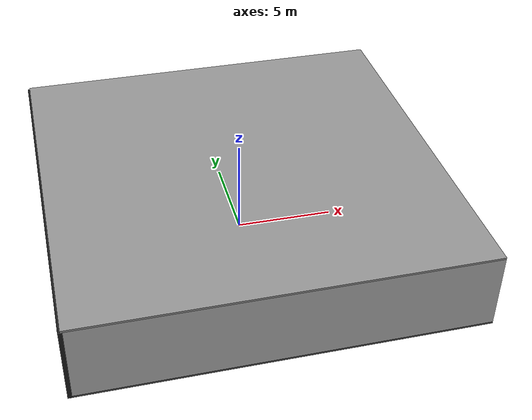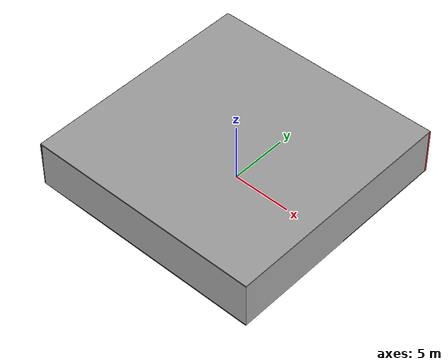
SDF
<sdf version="1.4">
 <world name="default">
  <physics type="ode">
   <max_step_size>0.001</max_step_size>
   <real_time_factor>1</real_time_factor>
   <real_time_update_rate>1000</real_time_update_rate>
   <gravity>0 0 -9.8</gravity>
  </physics>
  <scene><ambient>0.4 0.4 0.4 1</ambient><background>0.7 0.7 0.7 1</background><shadows>1</shadows></scene>
  <model name="Surrounding">
   <static>1</static>
   <link name="Ceiling">
    <collision name="Ceiling_Collision"><geometry><box><size>20 20 0.1</size></box></geometry></collision>
    <visual name="Ceiling_Visual">
     <geometry><box><size>20 20 0.1</size></box></geometry>
     <material>
      <script><uri>file://media/materials/scripts/gazebo.material</uri><name>Gazebo/GreyGradientSky</name></script>
     </material>
    </visual>
    <pose>0 0 4.05 0 0 0</pose>
   </link>
   <link name="Wall_South">
    <collision name="Wall_South_Collision">
     <geometry><box><size>20 0 4</size></box></geometry>
     <pose>0 0 2 0 -0 0</pose>
    </collision>
    <visual name="Wall_South_Visual">
     <pose>0 0 2 0 -0 0</pose>
     <geometry><box><size>20 0 4</size></box></geometry>
     <material>
      <script><uri>file://media/materials/scripts/gazebo.material</uri><name>Gazebo/PioneerBody</name></script>
     </material>
    </visual>
    <velocity_decay><linear>0</linear><angular>0</angular></velocity_decay>
    <pose>0 -10 0 0 -0 0</pose>
   </link>
   <link name="Wall_East">
    <collision name="Wall_21_Collision">
     <geometry><box><size>20 0 4</size></box></geometry>
     <pose>0 0 2 0 -0 0</pose>
    </collision>
    <visual name="Wall_21_Visual">
     <pose>0 0 2 0 -0 0</pose>
     <geometry><box><size>20 0 4</size></box></geometry>
     <material>
      <script><uri>file://media/materials/scripts/gazebo.material</uri><name>Gazebo/PioneerBody</name></script>
     </material>
    </visual>
    <velocity_decay><linear>0</linear><angular>0</angular></velocity_decay>
    <pose>10 0 0 0 -0 1.5708</pose>
   </link>
   <link name="Wall_North">
    <collision name="Wall_22_Collision">
     <geometry><box><size>20 0.2 4</size></box></geometry>
     <pose>0 0 2 0 -0 0</pose>
    </collision>
    <visual name="Wall_22_Visual">
     <pose>0 0 2 0 -0 0</pose>
     <geometry><box><size>20 0.2 4</size></box></geometry>
     <material>
      <script><uri>file://media/materials/scripts/gazebo.material</uri><name>Gazebo/RedBright</name></script>
     </material>
    </visual>
    <velocity_decay><linear>0</linear><angular>0</angular></velocity_decay>
    <pose>0 10 0 0 -0 0</pose>
   </link>
   <link name="Wall_West">
    <collision name="Wall_23_Collision">
     <geometry><box><size>20 0.2 4</size></box></geometry>
     <pose>0 0 2 0 -0 0</pose>
    </collision>
    <visual name="Wall_23_Visual">
     <pose>0 0 2 0 -0 0</pose>
     <geometry><box><size>20 0.2 4</size></box></geometry>
     <material>
      <script><uri>file://media/materials/scripts/gazebo.material</uri><name>Gazebo/Black</name></script>
     </material>
    </visual>
    <velocity_decay><linear>0</linear><angular>0</angular></velocity_decay>
    <pose>-10 0 0 0 0 -1.5708</pose>
   </link>
   <link name="Ground_link">
    <collision name="collision">
     <pose>0 0 .05 0 -0 0</pose>
     <geometry><box><size>20 20 0.1</size></box></geometry>
    </collision>
    <visual name="visual">
     <pose>0 0 .05 0 -0 0</pose>
     <geometry><box><size>20 20 0.1</size></box></geometry>
     <material>
      <script><uri>file://media/materials/scripts/gazebo.material</uri><name>Gazebo/Road</name></script>
     </material>
    </visual>
   </link>
   <static>1</static>
  </model>
  <spherical_coordinates>
   <surface_model>EARTH_WGS84</surface_model>
   <latitude_deg>0</latitude_deg>
   <longitude_deg>0</longitude_deg>
   <elevation>0</elevation>
   <heading_deg>0</heading_deg>
  </spherical_coordinates>
  <light name="lightball_0" type="diffuse">
   <diffuse>0.8 0.8 0.8 1</diffuse>
   <specular>0.2 0.2 0.2 1</specular>
   <attenuation>
    <range>100</range>
    <constant>0.7</constant>
    <linear>0.01</linear>
    <quadratic>0.001</quadratic>
   </attenuation>
   <direction>-0.5 0.1 -0.9</direction>
   <pose>8.87518645866 0.105969747755 2.55093909877 0 0 0</pose>
  </light>
  <light name="lightball_1" type="diffuse">
   <diffuse>0.8 0.8 0.8 1</diffuse>
   <specular>0.2 0.2 0.2 1</specular>
   <attenuation>
    <range>100</range>
    <constant>0.7</constant>
    <linear>0.01</linear>
    <quadratic>0.001</quadratic>
   </attenuation>
   <direction>-0.5 0.1 -0.9</direction>
   <pose>0.820211463587 9.91883956641 3.32600968484 0 0 0</pose>
  </light>
  <light name="lightball_2" type="diffuse">
   <diffuse>0.8 0.8 0.8 1</diffuse>
   <specular>0.2 0.2 0.2 1</specular>
   <attenuation>
    <range>100</range>
    <constant>0.7</constant>
    <linear>0.01</linear>
    <quadratic>0.001</quadratic>
   </attenuation>
   <direction>-0.5 0.1 -0.9</direction>
   <pose>9.53797015781 -9.58386779389 3.1046611777 0 0 0</pose>
  </light>
  <light name="lightball_3" type="diffuse">
   <diffuse>0.8 0.8 0.8 1</diffuse>
   <specular>0.2 0.2 0.2 1</specular>
   <attenuation>
    <range>100</range>
    <constant>0.7</constant>
    <linear>0.01</linear>
    <quadratic>0.001</quadratic>
   </attenuation>
   <direction>-0.5 0.1 -0.9</direction>
   <pose>8.55479172598 -3.82080926142 2.3289118125 0 0 0</pose>
  </light>
  <light name="lightball_4" type="diffuse">
   <diffuse>0.8 0.8 0.8 1</diffuse>
   <specular>0.2 0.2 0.2 1</specular>
   <attenuation>
    <range>100</range>
    <constant>0.7</constant>
    <linear>0.01</linear>
    <quadratic>0.001</quadratic>
   </attenuation>
   <direction>-0.5 0.1 -0.9</direction>
   <pose>3.24793388566 -7.64615276146 0.724629263812 0 0 0</pose>
  </light>
  <include><uri>model://cabinet</uri><pose>-4.63752544028 -1.67818057178 0 0 0 2.99336324662</pose></include>
  <include><uri>model://cabinet</uri><pose>0.765709199521 -4.40510872409 0 0 0 1.10757632915</pose></include>
  <include>
   <uri>model://robocup_3Dsim_goal</uri>
   <pose>7.03408938736 -4.57795661601 0 0 0 2.15947952593</pose>
  </include>
 </world>
</sdf>

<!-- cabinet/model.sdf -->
<sdf version="1.5">
  <model name="cabinet">
    <static>true</static>
    <link name="cabinet_bottom_plate">
      <inertial>
        <pose>0 0 -1 0 0 0</pose>
        <inertia>
          <ixx>2.050000</ixx>
          <ixy>0</ixy>
          <ixz>0</ixz>
          <iyy>2.050000</iyy>
          <iyz>0</iyz>
          <izz>2.050000</izz>
        </inertia>
        <mass>25.000000</mass>
      </inertial>
      <collision name="cabinet_bottom_plate_geom">
        <pose>0 0 0.010000 0 0 0</pose>
        <geometry>
          <box>
            <size>0.450000 0.450000 0.020000</size>
          </box>
        </geometry>
      </collision>
      <visual name="cabinet_bottom_plate_geom_visual">
        <pose>0 0 0.010000 0 0 0</pose>
        <geometry>
          <box>
            <size>0.450000 0.450000 0.020000</size>
          </box>
        </geometry>
        <material>
          <script>
            <uri>model://media/materials/scripts/gazebo.material</uri>
            <name>Gazebo/Wood</name>
          </script>
        </material>
      </visual>
      <collision name="cabinet_bottom_plate_geom_cabinet_back_plate">
        <pose>0.235000 0 0.510000 0 0 0</pose>
        <geometry>
          <box>
            <size>0.020000 0.450000 1.020000</size>
          </box>
        </geometry>
      </collision>
      <visual name="cabinet_bottom_plate_geom_cabinet_back_plate_visual">
        <pose>0.235000 0 0.510000 0 0 0</pose>
        <geometry>
          <box>
            <size>0.020000 0.450000 1.020000</size>
          </box>
        </geometry>
        <material>
          <script>
            <uri>model://media/materials/scripts/gazebo.material</uri>
            <name>Gazebo/Wood</name>
          </script>
        </material>
      </visual>
      <collision name="cabinet_bottom_plate_geom_cabinet_left_plate">
        <pose>0 0.235000 0.510000 0 0 0</pose>
        <geometry>
          <box>
            <size>0.450000 0.020000 1.020000</size>
          </box>
        </geometry>
      </collision>
      <visual name="cabinet_bottom_plate_geom_cabinet_left_plate_visual">
        <pose>0 0.235000 0.510000 0 0 0</pose>
        <geometry>
          <box>
            <size>0.450000 0.020000 1.020000</size>
          </box>
        </geometry>
        <material>
          <script>
            <uri>model://media/materials/scripts/gazebo.material</uri>
            <name>Gazebo/Wood</name>
          </script>
        </material>
      </visual>
      <collision name="cabinet_bottom_plate_geom_cabinet_middle_plate">
        <pose>0 0 0.510000 0 0 0</pose>
        <geometry>
          <box>
            <size>0.450000 0.450000 0.020000</size>
          </box>
        </geometry>
      </collision>
      <visual name="cabinet_bottom_plate_geom_cabinet_middle_plate_visual">
        <pose>0 0 0.510000 0 0 0</pose>
        <geometry>
          <box>
            <size>0.450000 0.450000 0.020000</size>
          </box>
        </geometry>
        <material>
          <script>
            <uri>model://media/materials/scripts/gazebo.material</uri>
            <name>Gazebo/Wood</name>
          </script>
        </material>
      </visual>
      <collision name="cabinet_bottom_plate_geom_cabinet_right_plate">
        <pose>0 -0.235000 0.510000 0 0 0</pose>
        <geometry>
          <box>
            <size>0.450000 0.020000 1.020000</size>
          </box>
        </geometry>
      </collision>
      <visual name="cabinet_bottom_plate_geom_cabinet_right_plate_visual">
        <pose>0 -0.235000 0.510000 0 0 0</pose>
        <geometry>
          <box>
            <size>0.450000 0.020000 1.020000</size>
          </box>
        </geometry>
        <material>
          <script>
            <uri>model://media/materials/scripts/gazebo.material</uri>
            <name>Gazebo/Wood</name>
          </script>
        </material>
      </visual>
      <collision name="cabinet_bottom_plate_geom_cabinet_top_plate">
        <pose>0 0 1.010000 0 0 0</pose>
        <geometry>
          <box>
            <size>0.450000 0.450000 0.020000</size>
          </box>
        </geometry>
      </collision>
      <visual name="cabinet_bottom_plate_geom_cabinet_top_plate_visual">
        <pose>0 0 1.010000 0 0 0</pose>
        <geometry>
          <box>
            <size>0.450000 0.450000 0.020000</size>
          </box>
        </geometry>
        <material>
          <script>
            <uri>model://media/materials/scripts/gazebo.material</uri>
            <name>Gazebo/Wood</name>
          </script>
        </material>
      </visual>
    </link>
  </model>
</sdf>

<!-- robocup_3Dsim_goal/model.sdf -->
<sdf version="1.5">
  <model name="robocup_3d_goal">
    <static>true</static>
    <link name="left_post">
      <pose>0 1.05 0.45 0 0 0</pose>
      <collision name="collision">
        <geometry>
          <cylinder>
            <radius>0.05</radius>
            <length>0.9</length>
          </cylinder>
        </geometry>
      </collision>
      <visual name="visual">
        <geometry>
          <cylinder>
            <radius>0.05</radius>
            <length>0.9</length>
          </cylinder>
        </geometry>
        <material>
          <script>
            <uri>file://media/materials/scripts/gazebo.material</uri>
            <name>Gazebo/ZincYellow</name>
          </script>
        </material>
      </visual>
    </link>
    <link name="left_support_horiz_lower">
      <pose>0.30 1.05 0.01 0 0 0</pose>
      <collision name="collision">
        <geometry>
          <box>
            <size>0.50 0.02 0.02</size>
          </box>
        </geometry>
      </collision>
      <visual name="visual">
        <geometry>
          <box>
            <size>0.50 0.02 0.02</size>
          </box>
        </geometry>
        <material>
          <script>
            <uri>file://media/materials/scripts/gazebo.material</uri>
            <name>Gazebo/White</name>
          </script>
        </material>
      </visual>
    </link>
    <link name="left_support_horiz_upper">
      <pose>0.30 1.05 0.79 0 0 0</pose>
      <collision name="collision">
        <geometry>
          <box>
            <size>0.50 0.02 0.02</size>
          </box>
        </geometry>
      </collision>
      <visual name="visual">
        <geometry>
          <box>
            <size>0.50 0.02 0.02</size>
          </box>
        </geometry>
        <material>
          <script>
            <uri>file://media/materials/scripts/gazebo.material</uri>
            <name>Gazebo/White</name>
          </script>
        </material>
      </visual>
    </link>
    <link name="left_support_vertical">
      <pose>0.56 1.05 0.4 0 1.5708 0</pose>
      <collision name="collision">
        <geometry>
          <box>
            <size>0.80 0.02 0.02</size>
          </box>
        </geometry>
      </collision>
      <visual name="visual">
        <geometry>
          <box>
            <size>0.80 0.02 0.02</size>
          </box>
        </geometry>
        <material>
          <script>
            <uri>file://media/materials/scripts/gazebo.material</uri>
            <name>Gazebo/White</name>
          </script>
        </material>
      </visual>
    </link>
    <link name="right_support_horiz_lower">
      <pose>0.30 -1.05 0.01 0 0 0</pose>
      <collision name="collision">
        <geometry>
          <box>
            <size>0.50 0.02 0.02</size>
          </box>
        </geometry>
      </collision>
      <visual name="visual">
        <geometry>
          <box>
            <size>0.50 0.02 0.02</size>
          </box>
        </geometry>
        <material>
          <script>
            <uri>file://media/materials/scripts/gazebo.material</uri>
            <name>Gazebo/White</name>
          </script>
        </material>
      </visual>
    </link>
    <link name="right_support_horiz_upper">
      <pose>0.30 -1.05 0.79 0 0 0</pose>
      <collision name="collision">
        <geometry>
          <box>
            <size>0.50 0.02 0.02</size>
          </box>
        </geometry>
      </collision>
      <visual name="visual">
        <geometry>
          <box>
            <size>0.50 0.02 0.02</size>
          </box>
        </geometry>
        <material>
          <script>
            <uri>file://media/materials/scripts/gazebo.material</uri>
            <name>Gazebo/White</name>
          </script>
        </material>
      </visual>
    </link>
    <link name="right_support_vertical">
      <pose>0.56 -1.05 0.4 0 1.5708 0</pose>
      <collision name="collision">
        <geometry>
          <box>
            <size>0.80 0.02 0.02</size>
          </box>
        </geometry>
      </collision>
      <visual name="visual">
        <geometry>
          <box>
            <size>0.80 0.02 0.02</size>
          </box>
        </geometry>
        <material>
          <script>
            <uri>file://media/materials/scripts/gazebo.material</uri>
            <name>Gazebo/White</name>
          </script>
        </material>
      </visual>
    </link>
    <link name="center_support_horiz_lower">
      <pose>0.56 0 0.01 0 1.5708 0</pose>
      <collision name="collision">
        <geometry>
          <box>
            <size>0.02 2.08 0.02</size>
          </box>
        </geometry>
      </collision>
      <visual name="visual">
        <geometry>
          <box>
            <size>0.02 2.08 0.02</size>
          </box>
        </geometry>
        <material>
          <script>
            <uri>file://media/materials/scripts/gazebo.material</uri>
            <name>Gazebo/White</name>
          </script>
        </material>
      </visual>
    </link>
    <link name="center_support_horiz_upper">
      <pose>0.56 0 0.79 0 1.5708 0</pose>
      <collision name="collision">
        <geometry>
          <box>
            <size>0.02 2.08 0.02</size>
          </box>
        </geometry>
      </collision>
      <visual name="visual">
        <geometry>
          <box>
            <size>0.02 2.08 0.02</size>
          </box>
        </geometry>
        <material>
          <script>
            <uri>file://media/materials/scripts/gazebo.material</uri>
            <name>Gazebo/White</name>
          </script>
        </material>
      </visual>
    </link>
    <link name="right_post">
      <pose>0 -1.05 0.45 0 0 0</pose>
      <collision name="collision">
        <geometry>
          <cylinder>
            <radius>0.05</radius>
            <length>0.9</length>
          </cylinder>
        </geometry>
      </collision>
      <visual name="visual">
        <geometry>
          <cylinder>
            <radius>0.05</radius>
            <length>0.9</length>
          </cylinder>
        </geometry>
        <material>
          <script>
            <uri>file://media/materials/scripts/gazebo.material</uri>
            <name>Gazebo/ZincYellow</name>
          </script>
        </material>
      </visual>
    </link>
    <link name="crossbar">
      <pose>0 0 0.85 1.57 1.57 0</pose>
      <collision name="collision">
        <geometry>
          <cylinder>
            <radius>0.05</radius>
            <length>2.0</length>
          </cylinder>
        </geometry>
      </collision>
      <visual name="visual">
        <geometry>
          <cylinder>
            <radius>0.05</radius>
            <length>2.0</length>
          </cylinder>
        </geometry>
        <material>
          <script>
            <uri>file://media/materials/scripts/gazebo.material</uri>
            <name>Gazebo/ZincYellow</name>
          </script>
        </material>
      </visual>
    </link>
    <link name="center_net">
      <pose>0.56 0 0.40 0 0 0</pose>
      <collision name="collision">
        <geometry>
          <box>
            <size>0.01 2.1 0.80</size>
          </box>
        </geometry>
      </collision>
      <visual name="visual">
        <geometry>
          <box>
            <size>0.01 2.1 0.80</size>
          </box>
        </geometry>
        <material>
          <script>
            <uri>model://../model_source/models/robocup09_spl_field/materials/scripts/</uri>
            <uri>model://../model_source/models/robocup09_spl_field/materials/textures/</uri>
            <name>RoboCup/Net</name>
          </script>
        </material>
      </visual>
    </link>
    <link name="left_net">
      <pose>0.30 1.05 0.40 0 0 0</pose>
      <collision name="collision">
        <geometry>
          <box>
            <size>0.50 0.01 0.76</size>
          </box>
        </geometry>
      </collision>
      <visual name="visual">
        <geometry>
          <box>
            <size>0.50 0.01 0.76</size>
          </box>
        </geometry>
        <material>
          <script>
            <uri>model://../model_source/models/robocup09_spl_field/materials/scripts/</uri>
            <uri>model://../model_source/models/robocup09_spl_field/materials/textures/</uri>
            <name>RoboCup/Net</name>
          </script>
        </material>
      </visual>
    </link>
    <link name="right_net">
      <pose>0.30 -1.05 0.40 0 0 0</pose>
      <collision name="collision">
        <geometry>
          <box>
            <size>0.50 0.01 0.76</size>
          </box>
        </geometry>
      </collision>
      <visual name="visual">
        <geometry>
          <box>
            <size>0.50 0.01 0.76</size>
          </box>
        </geometry>
        <material>
          <script>
            <uri>model://../model_source/models/robocup09_spl_field/materials/scripts/</uri>
            <uri>model://../model_source/models/robocup09_spl_field/materials/textures/</uri>
            <name>RoboCup/Net</name>
          </script>
        </material>
      </visual>
    </link>
  </model>
</sdf>
